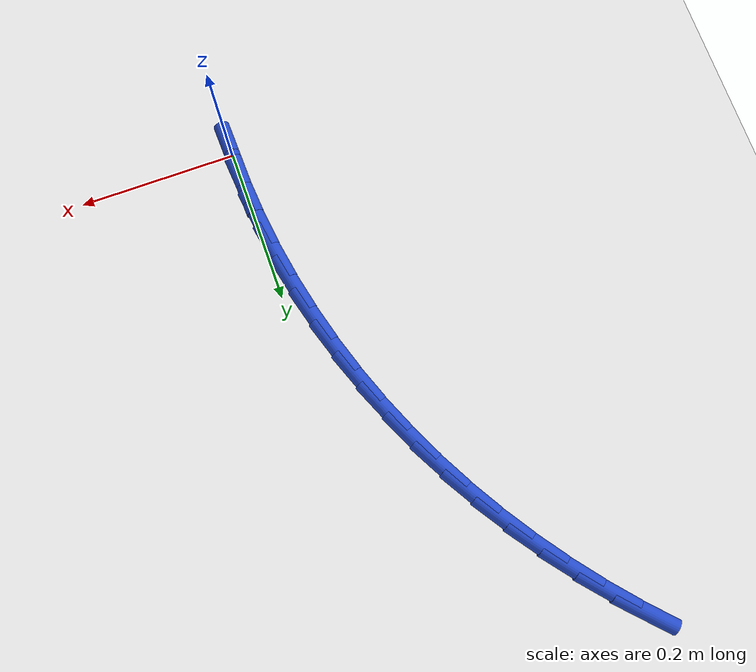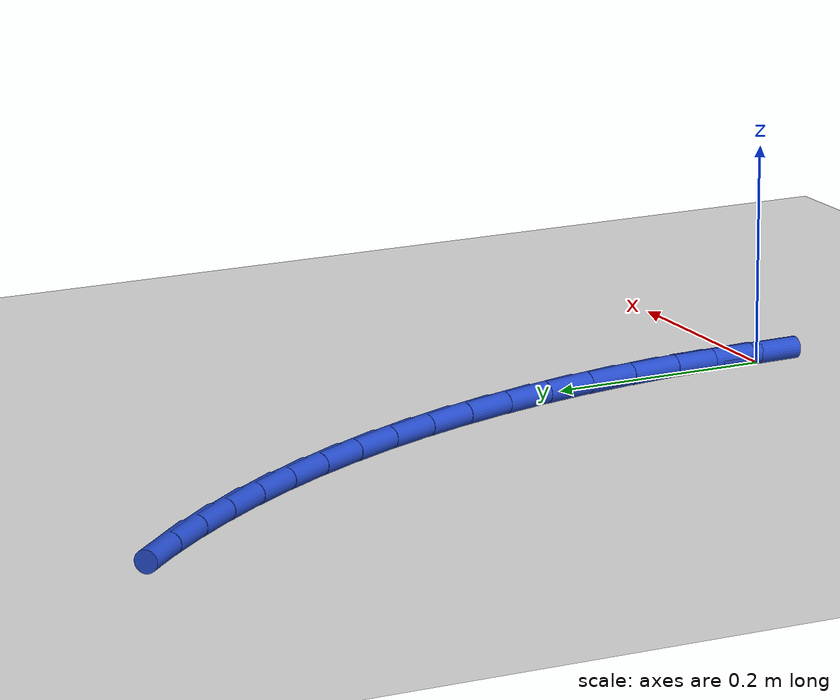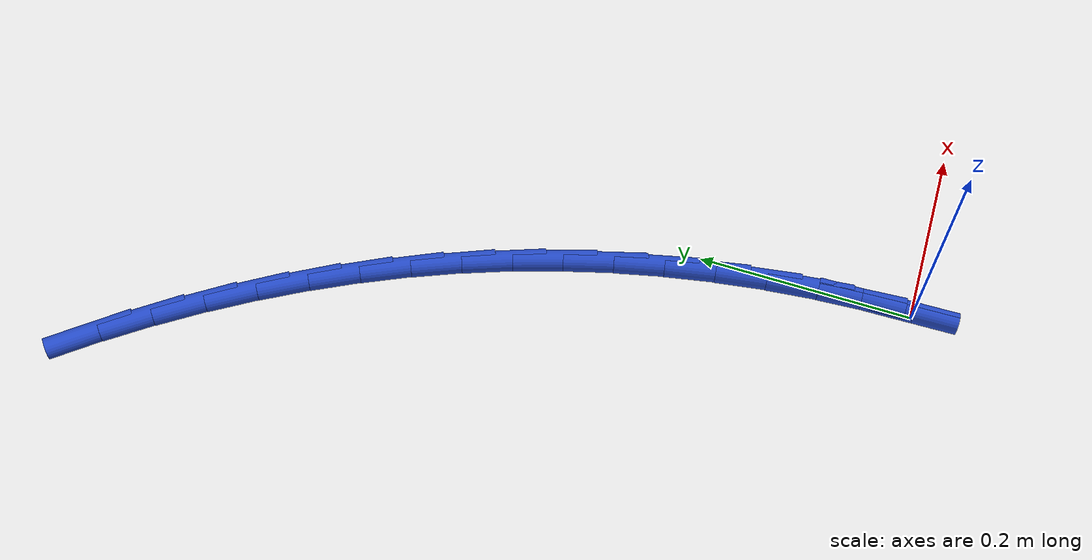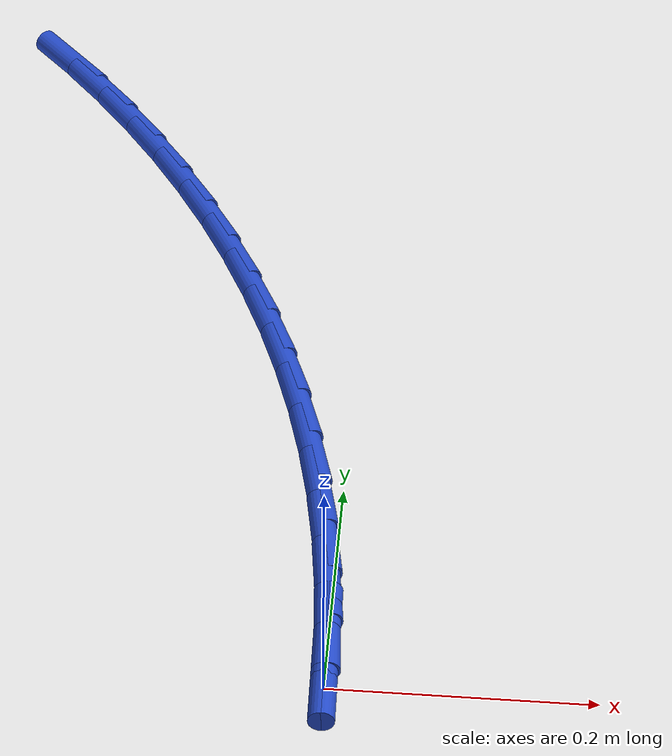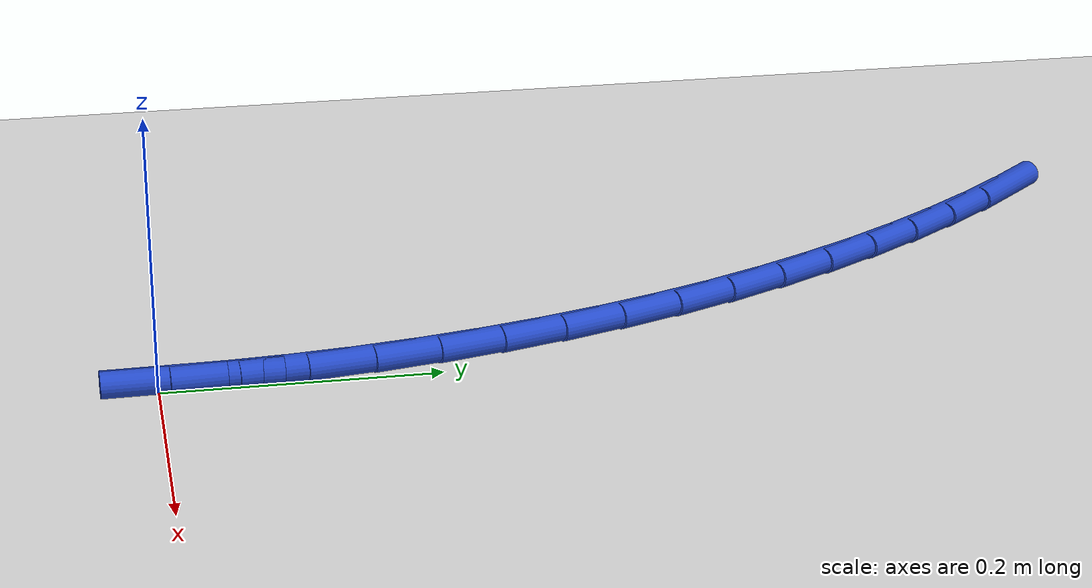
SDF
<sdf version="1.6">
 <world name="default">
  <model name="ground_plane">
   <static>1</static>
   <link name="link">
    <collision name="collision">
     <geometry><plane><normal>0 0 1</normal><size>100 100</size></plane></geometry>
     <surface><friction><ode><mu>100</mu><mu2>50</mu2></ode></friction></surface>
    </collision>
    <visual name="visual">
     <cast_shadows>0</cast_shadows>
     <geometry><plane><normal>0 0 1</normal><size>100 100</size></plane></geometry>
     <material>
      <script><uri>file://media/materials/scripts/gazebo.material</uri><name>Gazebo/WhiteGlow</name></script>
     </material>
    </visual>
   </link>
  </model>
  <model name="line">
   <link name="link_0">
    <pose>1.3877787807814457e-17 2.7755575615628914e-17 0.01 0 1.57 -1.544613781703044</pose>
    <collision name="collision">
     <geometry><cylinder><radius>0.01</radius><length>0.08</length></cylinder></geometry>
    </collision>
    <visual name="visual">
     <material>
      <script><name>Gazebo/Blue</name><uri>file://media/materials/scripts/gazebo.material</uri></script>
     </material>
     <geometry><cylinder><radius>0.01</radius><length>0.08</length></cylinder></geometry>
    </visual>
   </link>
   <link name="link_1">
    <pose>-0.0012545301461055526 0.04790380223661767 0.01 0 1.57 -1.4966450307925274</pose>
    <collision name="collision">
     <geometry><cylinder><radius>0.01</radius><length>0.08</length></cylinder></geometry>
    </collision>
    <visual name="visual">
     <material>
      <script><name>Gazebo/Blue</name><uri>file://media/materials/scripts/gazebo.material</uri></script>
     </material>
     <geometry><cylinder><radius>0.01</radius><length>0.08</length></cylinder></geometry>
    </visual>
   </link>
   <link name="link_2">
    <pose>-0.004800251176936376 0.09563351464047144 0.01 0 1.57 -1.449062128812275</pose>
    <collision name="collision">
     <geometry><cylinder><radius>0.01</radius><length>0.08</length></cylinder></geometry>
    </collision>
    <visual name="visual">
     <material>
      <script><name>Gazebo/Blue</name><uri>file://media/materials/scripts/gazebo.material</uri></script>
     </material>
     <geometry><cylinder><radius>0.01</radius><length>0.08</length></cylinder></geometry>
    </visual>
   </link>
   <link name="link_3">
    <pose>-0.010607514842249923 0.14310208976178904 0.01 0 1.57 -1.401814430581034</pose>
    <collision name="collision">
     <geometry><cylinder><radius>0.01</radius><length>0.08</length></cylinder></geometry>
    </collision>
    <visual name="visual">
     <material>
      <script><name>Gazebo/Blue</name><uri>file://media/materials/scripts/gazebo.material</uri></script>
     </material>
     <geometry><cylinder><radius>0.01</radius><length>0.08</length></cylinder></geometry>
    </visual>
   </link>
   <link name="link_4">
    <pose>-0.018646672891803686 0.1902224801507983 0.01 0 1.57 -1.354845360949157</pose>
    <collision name="collision">
     <geometry><cylinder><radius>0.01</radius><length>0.08</length></cylinder></geometry>
    </collision>
    <visual name="visual">
     <material>
      <script><name>Gazebo/Blue</name><uri>file://media/materials/scripts/gazebo.material</uri></script>
     </material>
     <geometry><cylinder><radius>0.01</radius><length>0.08</length></cylinder></geometry>
    </visual>
   </link>
   <link name="link_5">
    <pose>-0.02888807707535513 0.23690763835772682 0.01 0 1.57 -1.308093792040413</pose>
    <collision name="collision">
     <geometry><cylinder><radius>0.01</radius><length>0.08</length></cylinder></geometry>
    </collision>
    <visual name="visual">
     <material>
      <script><name>Gazebo/Blue</name><uri>file://media/materials/scripts/gazebo.material</uri></script>
     </material>
     <geometry><cylinder><radius>0.01</radius><length>0.08</length></cylinder></geometry>
    </visual>
   </link>
   <link name="link_6">
    <pose>-0.041302079142661735 0.2830705169328024 0.01 0 1.57 -1.2614953751232447</pose>
    <collision name="collision">
     <geometry><cylinder><radius>0.01</radius><length>0.08</length></cylinder></geometry>
    </collision>
    <visual name="visual">
     <material>
      <script><name>Gazebo/Blue</name><uri>file://media/materials/scripts/gazebo.material</uri></script>
     </material>
     <geometry><cylinder><radius>0.01</radius><length>0.08</length></cylinder></geometry>
    </visual>
   </link>
   <link name="link_7">
    <pose>-0.055859030843481 0.32862406842625275 0.01 0 1.57 -1.2149838292545687</pose>
    <collision name="collision">
     <geometry><cylinder><radius>0.01</radius><length>0.08</length></cylinder></geometry>
    </collision>
    <visual name="visual">
     <material>
      <script><name>Gazebo/Blue</name><uri>file://media/materials/scripts/gazebo.material</uri></script>
     </material>
     <geometry><cylinder><radius>0.01</radius><length>0.08</length></cylinder></geometry>
    </visual>
   </link>
   <link name="link_8">
    <pose>-0.07252928392757041 0.3734812453883056 0.01 0 1.57 -1.1684940254506615</pose>
    <collision name="collision">
     <geometry><cylinder><radius>0.01</radius><length>0.08</length></cylinder></geometry>
    </collision>
    <visual name="visual">
     <material>
      <script><name>Gazebo/Blue</name><uri>file://media/materials/scripts/gazebo.material</uri></script>
     </material>
     <geometry><cylinder><radius>0.01</radius><length>0.08</length></cylinder></geometry>
    </visual>
   </link>
   <link name="link_9">
    <pose>-0.09128311318735405 0.417555043475024 0.01 0 1.57 -1.1221879623194562</pose>
    <collision name="collision">
     <geometry><cylinder><radius>0.01</radius><length>0.08</length></cylinder></geometry>
    </collision>
    <visual name="visual">
     <material>
      <script><name>Gazebo/Blue</name><uri>file://media/materials/scripts/gazebo.material</uri></script>
     </material>
     <geometry><cylinder><radius>0.01</radius><length>0.08</length></cylinder></geometry>
    </visual>
   </link>
   <link name="link_10">
    <pose>-0.1120812197816867 0.46076382078752925 0.01 0 1.57 -1.0764483833147556</pose>
    <collision name="collision">
     <geometry><cylinder><radius>0.01</radius><length>0.08</length></cylinder></geometry>
    </collision>
    <visual name="visual">
     <material>
      <script><name>Gazebo/Blue</name><uri>file://media/materials/scripts/gazebo.material</uri></script>
     </material>
     <geometry><cylinder><radius>0.01</radius><length>0.08</length></cylinder></geometry>
    </visual>
   </link>
   <link name="link_11">
    <pose>-0.13486556895129687 0.5030364299096123 0.01 0 1.57 -1.0312596849297924</pose>
    <collision name="collision">
     <geometry><cylinder><radius>0.01</radius><length>0.08</length></cylinder></geometry>
    </collision>
    <visual name="visual">
     <material>
      <script><name>Gazebo/Blue</name><uri>file://media/materials/scripts/gazebo.material</uri></script>
     </material>
     <geometry><cylinder><radius>0.01</radius><length>0.08</length></cylinder></geometry>
    </visual>
   </link>
   <link name="link_12">
    <pose>-0.15957595327795984 0.5443029403887356 0.01 0 1.57 -0.9865486678693791</pose>
    <collision name="collision">
     <geometry><cylinder><radius>0.01</radius><length>0.08</length></cylinder></geometry>
    </collision>
    <visual name="visual">
     <material>
      <script><name>Gazebo/Blue</name><uri>file://media/materials/scripts/gazebo.material</uri></script>
     </material>
     <geometry><cylinder><radius>0.01</radius><length>0.08</length></cylinder></geometry>
    </visual>
   </link>
   <link name="link_13">
    <pose>-0.18615216534345114 0.5844934217723623 0.01 0 1.57 -0.9422376761508325</pose>
    <collision name="collision">
     <geometry><cylinder><radius>0.01</radius><length>0.08</length></cylinder></geometry>
    </collision>
    <visual name="visual">
     <material>
      <script><name>Gazebo/Blue</name><uri>file://media/materials/scripts/gazebo.material</uri></script>
     </material>
     <geometry><cylinder><radius>0.01</radius><length>0.08</length></cylinder></geometry>
    </visual>
   </link>
   <link name="link_14">
    <pose>-0.21453399772954612 0.6235379436079551 0.01 0 1.57 -0.8982459065295604</pose>
    <collision name="collision">
     <geometry><cylinder><radius>0.01</radius><length>0.08</length></cylinder></geometry>
    </collision>
    <visual name="visual">
     <material>
      <script><name>Gazebo/Blue</name><uri>file://media/materials/scripts/gazebo.material</uri></script>
     </material>
     <geometry><cylinder><radius>0.01</radius><length>0.08</length></cylinder></geometry>
    </visual>
   </link>
   <link name="link_15">
    <pose>-0.24466124301802022 0.6613665754429768 0.01 0 1.57 -0.8544905910481302</pose>
    <collision name="collision">
     <geometry><cylinder><radius>0.01</radius><length>0.08</length></cylinder></geometry>
    </collision>
    <visual name="visual">
     <material>
      <script><name>Gazebo/Blue</name><uri>file://media/materials/scripts/gazebo.material</uri></script>
     </material>
     <geometry><cylinder><radius>0.01</radius><length>0.08</length></cylinder></geometry>
    </visual>
   </link>
   <link name="link_16">
    <pose>-0.2764736937906489 0.6979093868248906 0.01 0 1.57 -0.8108880752443167</pose>
    <collision name="collision">
     <geometry><cylinder><radius>0.01</radius><length>0.08</length></cylinder></geometry>
    </collision>
    <visual name="visual">
     <material>
      <script><name>Gazebo/Blue</name><uri>file://media/materials/scripts/gazebo.material</uri></script>
     </material>
     <geometry><cylinder><radius>0.01</radius><length>0.08</length></cylinder></geometry>
    </visual>
   </link>
   <link name="link_150">
    <pose>2.949029909160572e-17 1.6653345369377348e-16 0.01 0 1.57 -1.5444560968691163</pose>
    <collision name="collision">
     <geometry><cylinder><radius>0.01</radius><length>0.08</length></cylinder></geometry>
    </collision>
    <visual name="visual">
     <material>
      <script><name>Gazebo/Blue</name><uri>file://media/materials/scripts/gazebo.material</uri></script>
     </material>
     <geometry><cylinder><radius>0.01</radius><length>0.08</length></cylinder></geometry>
    </visual>
   </link>
   <link name="link_151">
    <pose>-0.0012618270589547578 0.047893857693303524 0.01 0 1.57 -1.5444560968691166</pose>
    <collision name="collision">
     <geometry><cylinder><radius>0.01</radius><length>0.08</length></cylinder></geometry>
    </collision>
    <visual name="visual">
     <material>
      <script><name>Gazebo/Blue</name><uri>file://media/materials/scripts/gazebo.material</uri></script>
     </material>
     <geometry><cylinder><radius>0.01</radius><length>0.08</length></cylinder></geometry>
    </visual>
   </link>
  </model>
 </world>
</sdf>
